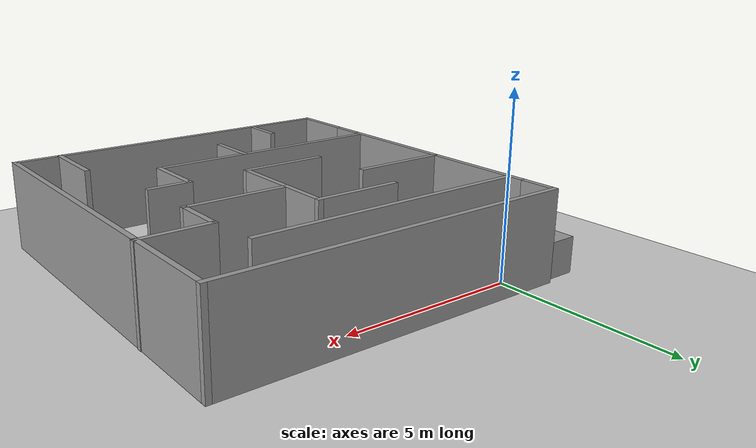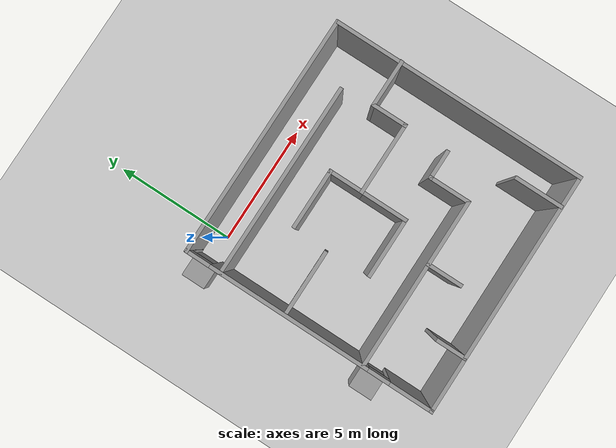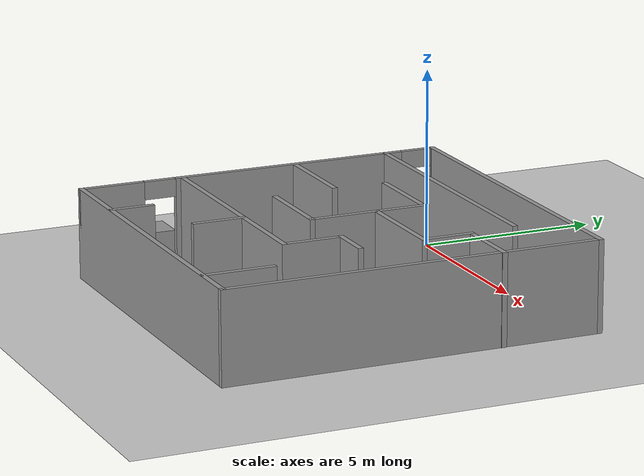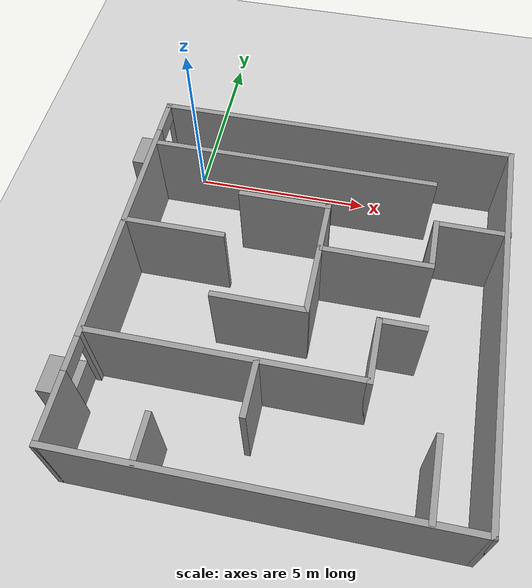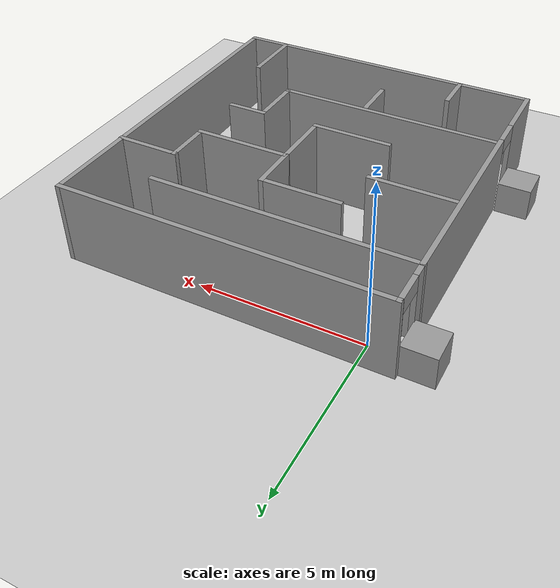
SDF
<sdf version="1.7">
 <world name="default">
  <light name="sun" type="directional">
   <pose>0 0 10 0 -0 0</pose>
   <diffuse>0.8 0.8 0.8 1</diffuse>
   <specular>0.2 0.2 0.2 1</specular>
   <attenuation>
    <range>1000</range>
    <constant>0.9</constant>
    <linear>0.01</linear>
    <quadratic>0.001</quadratic>
   </attenuation>
   <direction>-0.5 0.1 -0.9</direction>
   <spot><inner_angle>0</inner_angle><outer_angle>0</outer_angle><falloff>0</falloff></spot>
  </light>
  <model name="ground_plane">
   <static>1</static>
   <link name="link">
    <collision name="collision">
     <geometry><plane><normal>0 0 1</normal><size>100 100</size></plane></geometry>
     <surface>
      <contact><collide_bitmask>65535</collide_bitmask></contact>
      <friction><ode><mu>100</mu><mu2>50</mu2></ode></friction>
     </surface>
    </collision>
    <visual name="visual">
     <cast_shadows>0</cast_shadows>
     <geometry><plane><normal>0 0 1</normal><size>100 100</size></plane></geometry>
     <material>
      <script><uri>file://media/materials/scripts/gazebo.material</uri><name>Gazebo/Grey</name></script>
     </material>
    </visual>
   </link>
  </model>
  <gravity>0 0 -9.8</gravity>
  <magnetic_field>6e-06 2.3e-05 -4.2e-05</magnetic_field>
  <atmosphere type="adiabatic"/>
  <physics type="ode">
   <max_step_size>0.001</max_step_size>
   <real_time_factor>1</real_time_factor>
   <real_time_update_rate>1000</real_time_update_rate>
  </physics>
  <scene><ambient>0.4 0.4 0.4 1</ambient><background>0.7 0.7 0.7 1</background><shadows>1</shadows></scene>
  <spherical_coordinates>
   <surface_model>EARTH_WGS84</surface_model>
   <latitude_deg>0</latitude_deg>
   <longitude_deg>0</longitude_deg>
   <elevation>0</elevation>
   <heading_deg>0</heading_deg>
  </spherical_coordinates>
  <model name="Untitled">
   <link name="Wall_0">
    <pose>-4.93434 0 0 0 0 -1.5708</pose>
    <visual name="Wall_0_Visual_0">
     <pose>-5.1715 0 1.25 0 -0 0</pose>
     <geometry><box><size>0.157004 0.15 2.5</size></box></geometry>
     <material>
      <script><uri>file://media/materials/scripts/gazebo.material</uri><name>Gazebo/Grey</name></script>
      <ambient>1 1 1 1</ambient>
      <shader type="pixel"/>
     </material>
     <meta><layer>0</layer></meta>
    </visual>
    <visual name="Wall_0_Visual_1">
     <pose>-0.839168 0 1.25 0 -0 0</pose>
     <geometry><box><size>6.70766 0.15 2.5</size></box></geometry>
     <material>
      <script><uri>file://media/materials/scripts/gazebo.material</uri><name>Gazebo/Grey</name></script>
      <ambient>1 1 1 1</ambient>
      <shader type="pixel"/>
     </material>
     <meta><layer>0</layer></meta>
    </visual>
    <visual name="Wall_0_Visual_2">
     <pose>4.33233 0 1.25 0 -0 0</pose>
     <geometry><box><size>1.83534 0.15 2.5</size></box></geometry>
     <material>
      <script><uri>file://media/materials/scripts/gazebo.material</uri><name>Gazebo/Grey</name></script>
      <ambient>1 1 1 1</ambient>
      <shader type="pixel"/>
     </material>
     <meta><layer>0</layer></meta>
    </visual>
    <visual name="Wall_0_Visual_3">
     <pose>-4.643 0 2.25 0 -0 0</pose>
     <geometry><box><size>0.9 0.15 0.5</size></box></geometry>
     <material>
      <script><uri>file://media/materials/scripts/gazebo.material</uri><name>Gazebo/Grey</name></script>
      <ambient>1 1 1 1</ambient>
      <shader type="pixel"/>
     </material>
     <meta><layer>0</layer></meta>
    </visual>
    <visual name="Wall_0_Visual_4">
     <pose>2.96466 0 2.25 0 -0 0</pose>
     <geometry><box><size>0.9 0.15 0.5</size></box></geometry>
     <material>
      <script><uri>file://media/materials/scripts/gazebo.material</uri><name>Gazebo/Grey</name></script>
      <ambient>1 1 1 1</ambient>
      <shader type="pixel"/>
     </material>
     <meta><layer>0</layer></meta>
    </visual>
    <collision name="Wall_0_Collision_0">
     <pose>-5.1715 0 1.25 0 -0 0</pose>
     <geometry><box><size>0.157004 0.15 2.5</size></box></geometry>
     <surface>
      <friction>
       <ode><mu>1</mu><mu2>1</mu2><fdir1>0 0 0</fdir1><slip1>0</slip1><slip2>0</slip2></ode>
       <torsional>
        <coefficient>1</coefficient>
        <patch_radius>0</patch_radius>
        <surface_radius>0</surface_radius>
        <use_patch_radius>1</use_patch_radius>
        <ode><slip>0</slip></ode>
       </torsional>
      </friction>
      <bounce><restitution_coefficient>0</restitution_coefficient><threshold>1e+06</threshold></bounce>
      <contact>
       <collide_without_contact>0</collide_without_contact>
       <collide_without_contact_bitmask>1</collide_without_contact_bitmask>
       <collide_bitmask>1</collide_bitmask>
       <ode>
        <soft_cfm>0</soft_cfm>
        <soft_erp>0.2</soft_erp>
        <kp>1e+13</kp>
        <kd>1</kd>
        <max_vel>0.01</max_vel>
        <min_depth>0</min_depth>
       </ode>
       <bullet>
        <split_impulse>1</split_impulse>
        <split_impulse_penetration_threshold>-0.01</split_impulse_penetration_threshold>
        <soft_cfm>0</soft_cfm>
        <soft_erp>0.2</soft_erp>
        <kp>1e+13</kp>
        <kd>1</kd>
       </bullet>
      </contact>
     </surface>
    </collision>
    <collision name="Wall_0_Collision_2">
     <pose>4.33233 0 1.25 0 -0 0</pose>
     <geometry><box><size>1.83534 0.15 2.5</size></box></geometry>
     <surface>
      <friction>
       <ode><mu>1</mu><mu2>1</mu2><fdir1>0 0 0</fdir1><slip1>0</slip1><slip2>0</slip2></ode>
       <torsional>
        <coefficient>1</coefficient>
        <patch_radius>0</patch_radius>
        <surface_radius>0</surface_radius>
        <use_patch_radius>1</use_patch_radius>
        <ode><slip>0</slip></ode>
       </torsional>
      </friction>
      <bounce><restitution_coefficient>0</restitution_coefficient><threshold>1e+06</threshold></bounce>
      <contact>
       <collide_without_contact>0</collide_without_contact>
       <collide_without_contact_bitmask>1</collide_without_contact_bitmask>
       <collide_bitmask>1</collide_bitmask>
       <ode>
        <soft_cfm>0</soft_cfm>
        <soft_erp>0.2</soft_erp>
        <kp>1e+13</kp>
        <kd>1</kd>
        <max_vel>0.01</max_vel>
        <min_depth>0</min_depth>
       </ode>
       <bullet>
        <split_impulse>1</split_impulse>
        <split_impulse_penetration_threshold>-0.01</split_impulse_penetration_threshold>
        <soft_cfm>0</soft_cfm>
        <soft_erp>0.2</soft_erp>
        <kp>1e+13</kp>
        <kd>1</kd>
       </bullet>
      </contact>
     </surface>
    </collision>
    <collision name="Wall_0_Collision_1">
     <pose>-0.839168 0 1.25 0 -0 0</pose>
     <geometry><box><size>6.70766 0.15 2.5</size></box></geometry>
     <surface>
      <friction>
       <ode><mu>1</mu><mu2>1</mu2><fdir1>0 0 0</fdir1><slip1>0</slip1><slip2>0</slip2></ode>
       <torsional>
        <coefficient>1</coefficient>
        <patch_radius>0</patch_radius>
        <surface_radius>0</surface_radius>
        <use_patch_radius>1</use_patch_radius>
        <ode><slip>0</slip></ode>
       </torsional>
      </friction>
      <bounce><restitution_coefficient>0</restitution_coefficient><threshold>1e+06</threshold></bounce>
      <contact>
       <collide_without_contact>0</collide_without_contact>
       <collide_without_contact_bitmask>1</collide_without_contact_bitmask>
       <collide_bitmask>1</collide_bitmask>
       <ode>
        <soft_cfm>0</soft_cfm>
        <soft_erp>0.2</soft_erp>
        <kp>1e+13</kp>
        <kd>1</kd>
        <max_vel>0.01</max_vel>
        <min_depth>0</min_depth>
       </ode>
       <bullet>
        <split_impulse>1</split_impulse>
        <split_impulse_penetration_threshold>-0.01</split_impulse_penetration_threshold>
        <soft_cfm>0</soft_cfm>
        <soft_erp>0.2</soft_erp>
        <kp>1e+13</kp>
        <kd>1</kd>
       </bullet>
      </contact>
     </surface>
    </collision>
    <collision name="Wall_0_Collision_3">
     <pose>-4.643 0 2.25 0 -0 0</pose>
     <geometry><box><size>0.9 0.15 0.5</size></box></geometry>
     <surface>
      <friction>
       <ode><mu>1</mu><mu2>1</mu2><fdir1>0 0 0</fdir1><slip1>0</slip1><slip2>0</slip2></ode>
       <torsional>
        <coefficient>1</coefficient>
        <patch_radius>0</patch_radius>
        <surface_radius>0</surface_radius>
        <use_patch_radius>1</use_patch_radius>
        <ode><slip>0</slip></ode>
       </torsional>
      </friction>
      <bounce><restitution_coefficient>0</restitution_coefficient><threshold>1e+06</threshold></bounce>
      <contact>
       <collide_without_contact>0</collide_without_contact>
       <collide_without_contact_bitmask>1</collide_without_contact_bitmask>
       <collide_bitmask>1</collide_bitmask>
       <ode>
        <soft_cfm>0</soft_cfm>
        <soft_erp>0.2</soft_erp>
        <kp>1e+13</kp>
        <kd>1</kd>
        <max_vel>0.01</max_vel>
        <min_depth>0</min_depth>
       </ode>
       <bullet>
        <split_impulse>1</split_impulse>
        <split_impulse_penetration_threshold>-0.01</split_impulse_penetration_threshold>
        <soft_cfm>0</soft_cfm>
        <soft_erp>0.2</soft_erp>
        <kp>1e+13</kp>
        <kd>1</kd>
       </bullet>
      </contact>
     </surface>
    </collision>
    <collision name="Wall_0_Collision_4">
     <pose>2.96466 0 2.25 0 -0 0</pose>
     <geometry><box><size>0.9 0.15 0.5</size></box></geometry>
     <surface>
      <friction>
       <ode><mu>1</mu><mu2>1</mu2><fdir1>0 0 0</fdir1><slip1>0</slip1><slip2>0</slip2></ode>
       <torsional>
        <coefficient>1</coefficient>
        <patch_radius>0</patch_radius>
        <surface_radius>0</surface_radius>
        <use_patch_radius>1</use_patch_radius>
        <ode><slip>0</slip></ode>
       </torsional>
      </friction>
      <bounce><restitution_coefficient>0</restitution_coefficient><threshold>1e+06</threshold></bounce>
      <contact>
       <collide_without_contact>0</collide_without_contact>
       <collide_without_contact_bitmask>1</collide_without_contact_bitmask>
       <collide_bitmask>1</collide_bitmask>
       <ode>
        <soft_cfm>0</soft_cfm>
        <soft_erp>0.2</soft_erp>
        <kp>1e+13</kp>
        <kd>1</kd>
        <max_vel>0.01</max_vel>
        <min_depth>0</min_depth>
       </ode>
       <bullet>
        <split_impulse>1</split_impulse>
        <split_impulse_penetration_threshold>-0.01</split_impulse_penetration_threshold>
        <soft_cfm>0</soft_cfm>
        <soft_erp>0.2</soft_erp>
        <kp>1e+13</kp>
        <kd>1</kd>
       </bullet>
      </contact>
     </surface>
    </collision>
   </link>
   <link name="Wall_1">
    <pose>-0.009337 -5.175 0 0 -0 0</pose>
    <visual name="Wall_1_Visual">
     <pose>0 0 1.25 0 -0 0</pose>
     <geometry><box><size>10 0.15 2.5</size></box></geometry>
     <material>
      <script><uri>file://media/materials/scripts/gazebo.material</uri><name>Gazebo/Grey</name></script>
      <ambient>1 1 1 1</ambient>
      <shader type="pixel"/>
     </material>
     <meta><layer>0</layer></meta>
    </visual>
    <collision name="Wall_1_Collision">
     <pose>0 0 1.25 0 -0 0</pose>
     <geometry><box><size>10 0.15 2.5</size></box></geometry>
     <surface>
      <friction>
       <ode><mu>1</mu><mu2>1</mu2><fdir1>0 0 0</fdir1><slip1>0</slip1><slip2>0</slip2></ode>
       <torsional>
        <coefficient>1</coefficient>
        <patch_radius>0</patch_radius>
        <surface_radius>0</surface_radius>
        <use_patch_radius>1</use_patch_radius>
        <ode><slip>0</slip></ode>
       </torsional>
      </friction>
      <bounce><restitution_coefficient>0</restitution_coefficient><threshold>1e+06</threshold></bounce>
      <contact>
       <collide_without_contact>0</collide_without_contact>
       <collide_without_contact_bitmask>1</collide_without_contact_bitmask>
       <collide_bitmask>1</collide_bitmask>
       <ode>
        <soft_cfm>0</soft_cfm>
        <soft_erp>0.2</soft_erp>
        <kp>1e+13</kp>
        <kd>1</kd>
        <max_vel>0.01</max_vel>
        <min_depth>0</min_depth>
       </ode>
       <bullet>
        <split_impulse>1</split_impulse>
        <split_impulse_penetration_threshold>-0.01</split_impulse_penetration_threshold>
        <soft_cfm>0</soft_cfm>
        <soft_erp>0.2</soft_erp>
        <kp>1e+13</kp>
        <kd>1</kd>
       </bullet>
      </contact>
     </surface>
    </collision>
   </link>
   <link name="Wall_10">
    <pose>3.08434 1.76018 0 0 0 -1.5708</pose>
    <visual name="Wall_10_Visual">
     <pose>0 0 1.25 0 -0 0</pose>
     <geometry><box><size>1.5 0.15 2.5</size></box></geometry>
     <material>
      <script><uri>file://media/materials/scripts/gazebo.material</uri><name>Gazebo/Grey</name></script>
      <ambient>1 1 1 1</ambient>
      <shader type="pixel"/>
     </material>
     <meta><layer>0</layer></meta>
    </visual>
    <collision name="Wall_10_Collision">
     <pose>0 0 1.25 0 -0 0</pose>
     <geometry><box><size>1.5 0.15 2.5</size></box></geometry>
     <surface>
      <friction>
       <ode><mu>1</mu><mu2>1</mu2><fdir1>0 0 0</fdir1><slip1>0</slip1><slip2>0</slip2></ode>
       <torsional>
        <coefficient>1</coefficient>
        <patch_radius>0</patch_radius>
        <surface_radius>0</surface_radius>
        <use_patch_radius>1</use_patch_radius>
        <ode><slip>0</slip></ode>
       </torsional>
      </friction>
      <bounce><restitution_coefficient>0</restitution_coefficient><threshold>1e+06</threshold></bounce>
      <contact>
       <collide_without_contact>0</collide_without_contact>
       <collide_without_contact_bitmask>1</collide_without_contact_bitmask>
       <collide_bitmask>1</collide_bitmask>
       <ode>
        <soft_cfm>0</soft_cfm>
        <soft_erp>0.2</soft_erp>
        <kp>1e+13</kp>
        <kd>1</kd>
        <max_vel>0.01</max_vel>
        <min_depth>0</min_depth>
       </ode>
       <bullet>
        <split_impulse>1</split_impulse>
        <split_impulse_penetration_threshold>-0.01</split_impulse_penetration_threshold>
        <soft_cfm>0</soft_cfm>
        <soft_erp>0.2</soft_erp>
        <kp>1e+13</kp>
        <kd>1</kd>
       </bullet>
      </contact>
     </surface>
    </collision>
   </link>
   <link name="Wall_11">
    <pose>1.65934 1.08518 0 0 -0 3.14159</pose>
    <visual name="Wall_11_Visual">
     <pose>0 0 1.25 0 -0 0</pose>
     <geometry><box><size>3 0.15 2.5</size></box></geometry>
     <material>
      <script><uri>file://media/materials/scripts/gazebo.material</uri><name>Gazebo/Grey</name></script>
      <ambient>1 1 1 1</ambient>
      <shader type="pixel"/>
     </material>
     <meta><layer>0</layer></meta>
    </visual>
    <collision name="Wall_11_Collision">
     <pose>0 0 1.25 0 -0 0</pose>
     <geometry><box><size>3 0.15 2.5</size></box></geometry>
     <surface>
      <friction>
       <ode><mu>1</mu><mu2>1</mu2><fdir1>0 0 0</fdir1><slip1>0</slip1><slip2>0</slip2></ode>
       <torsional>
        <coefficient>1</coefficient>
        <patch_radius>0</patch_radius>
        <surface_radius>0</surface_radius>
        <use_patch_radius>1</use_patch_radius>
        <ode><slip>0</slip></ode>
       </torsional>
      </friction>
      <bounce><restitution_coefficient>0</restitution_coefficient><threshold>1e+06</threshold></bounce>
      <contact>
       <collide_without_contact>0</collide_without_contact>
       <collide_without_contact_bitmask>1</collide_without_contact_bitmask>
       <collide_bitmask>1</collide_bitmask>
       <ode>
        <soft_cfm>0</soft_cfm>
        <soft_erp>0.2</soft_erp>
        <kp>1e+13</kp>
        <kd>1</kd>
        <max_vel>0.01</max_vel>
        <min_depth>0</min_depth>
       </ode>
       <bullet>
        <split_impulse>1</split_impulse>
        <split_impulse_penetration_threshold>-0.01</split_impulse_penetration_threshold>
        <soft_cfm>0</soft_cfm>
        <soft_erp>0.2</soft_erp>
        <kp>1e+13</kp>
        <kd>1</kd>
       </bullet>
      </contact>
     </surface>
    </collision>
   </link>
   <link name="Wall_12">
    <pose>0.234337 1.76018 0 0 -0 1.5708</pose>
    <visual name="Wall_12_Visual">
     <pose>0 0 1.25 0 -0 0</pose>
     <geometry><box><size>1.5 0.15 2.5</size></box></geometry>
     <material>
      <script><uri>file://media/materials/scripts/gazebo.material</uri><name>Gazebo/Grey</name></script>
      <ambient>1 1 1 1</ambient>
      <shader type="pixel"/>
     </material>
     <meta><layer>0</layer></meta>
    </visual>
    <collision name="Wall_12_Collision">
     <pose>0 0 1.25 0 -0 0</pose>
     <geometry><box><size>1.5 0.15 2.5</size></box></geometry>
     <surface>
      <friction>
       <ode><mu>1</mu><mu2>1</mu2><fdir1>0 0 0</fdir1><slip1>0</slip1><slip2>0</slip2></ode>
       <torsional>
        <coefficient>1</coefficient>
        <patch_radius>0</patch_radius>
        <surface_radius>0</surface_radius>
        <use_patch_radius>1</use_patch_radius>
        <ode><slip>0</slip></ode>
       </torsional>
      </friction>
      <bounce><restitution_coefficient>0</restitution_coefficient><threshold>1e+06</threshold></bounce>
      <contact>
       <collide_without_contact>0</collide_without_contact>
       <collide_without_contact_bitmask>1</collide_without_contact_bitmask>
       <collide_bitmask>1</collide_bitmask>
       <ode>
        <soft_cfm>0</soft_cfm>
        <soft_erp>0.2</soft_erp>
        <kp>1e+13</kp>
        <kd>1</kd>
        <max_vel>0.01</max_vel>
        <min_depth>0</min_depth>
       </ode>
       <bullet>
        <split_impulse>1</split_impulse>
        <split_impulse_penetration_threshold>-0.01</split_impulse_penetration_threshold>
        <soft_cfm>0</soft_cfm>
        <soft_erp>0.2</soft_erp>
        <kp>1e+13</kp>
        <kd>1</kd>
       </bullet>
      </contact>
     </surface>
    </collision>
   </link>
   <link name="Wall_13">
    <pose>-0.940663 2.43518 0 0 -0 3.14159</pose>
    <visual name="Wall_13_Visual">
     <pose>0 0 1.25 0 -0 0</pose>
     <geometry><box><size>2.5 0.15 2.5</size></box></geometry>
     <material>
      <script><uri>file://media/materials/scripts/gazebo.material</uri><name>Gazebo/Grey</name></script>
      <ambient>1 1 1 1</ambient>
      <shader type="pixel"/>
     </material>
     <meta><layer>0</layer></meta>
    </visual>
    <collision name="Wall_13_Collision">
     <pose>0 0 1.25 0 -0 0</pose>
     <geometry><box><size>2.5 0.15 2.5</size></box></geometry>
     <surface>
      <friction>
       <ode><mu>1</mu><mu2>1</mu2><fdir1>0 0 0</fdir1><slip1>0</slip1><slip2>0</slip2></ode>
       <torsional>
        <coefficient>1</coefficient>
        <patch_radius>0</patch_radius>
        <surface_radius>0</surface_radius>
        <use_patch_radius>1</use_patch_radius>
        <ode><slip>0</slip></ode>
       </torsional>
      </friction>
      <bounce><restitution_coefficient>0</restitution_coefficient><threshold>1e+06</threshold></bounce>
      <contact>
       <collide_without_contact>0</collide_without_contact>
       <collide_without_contact_bitmask>1</collide_without_contact_bitmask>
       <collide_bitmask>1</collide_bitmask>
       <ode>
        <soft_cfm>0</soft_cfm>
        <soft_erp>0.2</soft_erp>
        <kp>1e+13</kp>
        <kd>1</kd>
        <max_vel>0.01</max_vel>
        <min_depth>0</min_depth>
       </ode>
       <bullet>
        <split_impulse>1</split_impulse>
        <split_impulse_penetration_threshold>-0.01</split_impulse_penetration_threshold>
        <soft_cfm>0</soft_cfm>
        <soft_erp>0.2</soft_erp>
        <kp>1e+13</kp>
        <kd>1</kd>
       </bullet>
      </contact>
     </surface>
    </collision>
   </link>
   <link name="Wall_15">
    <pose>0.234337 0.160179 0 0 0 -1.5708</pose>
    <visual name="Wall_15_Visual">
     <pose>0 0 1.25 0 -0 0</pose>
     <geometry><box><size>2 0.15 2.5</size></box></geometry>
     <material>
      <script><uri>file://media/materials/scripts/gazebo.material</uri><name>Gazebo/Grey</name></script>
      <ambient>1 1 1 1</ambient>
      <shader type="pixel"/>
     </material>
     <meta><layer>0</layer></meta>
    </visual>
    <collision name="Wall_15_Collision">
     <pose>0 0 1.25 0 -0 0</pose>
     <geometry><box><size>2 0.15 2.5</size></box></geometry>
     <surface>
      <friction>
       <ode><mu>1</mu><mu2>1</mu2><fdir1>0 0 0</fdir1><slip1>0</slip1><slip2>0</slip2></ode>
       <torsional>
        <coefficient>1</coefficient>
        <patch_radius>0</patch_radius>
        <surface_radius>0</surface_radius>
        <use_patch_radius>1</use_patch_radius>
        <ode><slip>0</slip></ode>
       </torsional>
      </friction>
      <bounce><restitution_coefficient>0</restitution_coefficient><threshold>1e+06</threshold></bounce>
      <contact>
       <collide_without_contact>0</collide_without_contact>
       <collide_without_contact_bitmask>1</collide_without_contact_bitmask>
       <collide_bitmask>1</collide_bitmask>
       <ode>
        <soft_cfm>0</soft_cfm>
        <soft_erp>0.2</soft_erp>
        <kp>1e+13</kp>
        <kd>1</kd>
        <max_vel>0.01</max_vel>
        <min_depth>0</min_depth>
       </ode>
       <bullet>
        <split_impulse>1</split_impulse>
        <split_impulse_penetration_threshold>-0.01</split_impulse_penetration_threshold>
        <soft_cfm>0</soft_cfm>
        <soft_erp>0.2</soft_erp>
        <kp>1e+13</kp>
        <kd>1</kd>
       </bullet>
      </contact>
     </surface>
    </collision>
   </link>
   <link name="Wall_16">
    <pose>-0.940663 -0.764821 0 0 -0 3.14159</pose>
    <visual name="Wall_16_Visual">
     <pose>0 0 1.25 0 -0 0</pose>
     <geometry><box><size>2.5 0.15 2.5</size></box></geometry>
     <material>
      <script><uri>file://media/materials/scripts/gazebo.material</uri><name>Gazebo/Grey</name></script>
      <ambient>1 1 1 1</ambient>
      <shader type="pixel"/>
     </material>
     <meta><layer>0</layer></meta>
    </visual>
    <collision name="Wall_16_Collision">
     <pose>0 0 1.25 0 -0 0</pose>
     <geometry><box><size>2.5 0.15 2.5</size></box></geometry>
     <surface>
      <friction>
       <ode><mu>1</mu><mu2>1</mu2><fdir1>0 0 0</fdir1><slip1>0</slip1><slip2>0</slip2></ode>
       <torsional>
        <coefficient>1</coefficient>
        <patch_radius>0</patch_radius>
        <surface_radius>0</surface_radius>
        <use_patch_radius>1</use_patch_radius>
        <ode><slip>0</slip></ode>
       </torsional>
      </friction>
      <bounce><restitution_coefficient>0</restitution_coefficient><threshold>1e+06</threshold></bounce>
      <contact>
       <collide_without_contact>0</collide_without_contact>
       <collide_without_contact_bitmask>1</collide_without_contact_bitmask>
       <collide_bitmask>1</collide_bitmask>
       <ode>
        <soft_cfm>0</soft_cfm>
        <soft_erp>0.2</soft_erp>
        <kp>1e+13</kp>
        <kd>1</kd>
        <max_vel>0.01</max_vel>
        <min_depth>0</min_depth>
       </ode>
       <bullet>
        <split_impulse>1</split_impulse>
        <split_impulse_penetration_threshold>-0.01</split_impulse_penetration_threshold>
        <soft_cfm>0</soft_cfm>
        <soft_erp>0.2</soft_erp>
        <kp>1e+13</kp>
        <kd>1</kd>
       </bullet>
      </contact>
     </surface>
    </collision>
   </link>
   <link name="Wall_18">
    <pose>-1.42954 -2.29966 0 0 -0 0</pose>
    <visual name="Wall_18_Visual">
     <pose>0 0 1.25 0 -0 0</pose>
     <geometry><box><size>7 0.15 2.5</size></box></geometry>
     <material>
      <script><uri>file://media/materials/scripts/gazebo.material</uri><name>Gazebo/Grey</name></script>
      <ambient>1 1 1 1</ambient>
      <shader type="pixel"/>
     </material>
     <meta><layer>0</layer></meta>
    </visual>
    <collision name="Wall_18_Collision">
     <pose>0 0 1.25 0 -0 0</pose>
     <geometry><box><size>7 0.15 2.5</size></box></geometry>
     <surface>
      <friction>
       <ode><mu>1</mu><mu2>1</mu2><fdir1>0 0 0</fdir1><slip1>0</slip1><slip2>0</slip2></ode>
       <torsional>
        <coefficient>1</coefficient>
        <patch_radius>0</patch_radius>
        <surface_radius>0</surface_radius>
        <use_patch_radius>1</use_patch_radius>
        <ode><slip>0</slip></ode>
       </torsional>
      </friction>
      <bounce><restitution_coefficient>0</restitution_coefficient><threshold>1e+06</threshold></bounce>
      <contact>
       <collide_without_contact>0</collide_without_contact>
       <collide_without_contact_bitmask>1</collide_without_contact_bitmask>
       <collide_bitmask>1</collide_bitmask>
       <ode>
        <soft_cfm>0</soft_cfm>
        <soft_erp>0.2</soft_erp>
        <kp>1e+13</kp>
        <kd>1</kd>
        <max_vel>0.01</max_vel>
        <min_depth>0</min_depth>
       </ode>
       <bullet>
        <split_impulse>1</split_impulse>
        <split_impulse_penetration_threshold>-0.01</split_impulse_penetration_threshold>
        <soft_cfm>0</soft_cfm>
        <soft_erp>0.2</soft_erp>
        <kp>1e+13</kp>
        <kd>1</kd>
       </bullet>
      </contact>
     </surface>
    </collision>
   </link>
   <link name="Wall_19">
    <pose>1.99546 -1.49966 0 0 -0 1.5708</pose>
    <visual name="Wall_19_Visual">
     <pose>0 0 1.25 0 -0 0</pose>
     <geometry><box><size>1.75 0.15 2.5</size></box></geometry>
     <material>
      <script><uri>file://media/materials/scripts/gazebo.material</uri><name>Gazebo/Grey</name></script>
      <ambient>1 1 1 1</ambient>
      <shader type="pixel"/>
     </material>
     <meta><layer>0</layer></meta>
    </visual>
    <collision name="Wall_19_Collision">
     <pose>0 0 1.25 0 -0 0</pose>
     <geometry><box><size>1.75 0.15 2.5</size></box></geometry>
     <surface>
      <friction>
       <ode><mu>1</mu><mu2>1</mu2><fdir1>0 0 0</fdir1><slip1>0</slip1><slip2>0</slip2></ode>
       <torsional>
        <coefficient>1</coefficient>
        <patch_radius>0</patch_radius>
        <surface_radius>0</surface_radius>
        <use_patch_radius>1</use_patch_radius>
        <ode><slip>0</slip></ode>
       </torsional>
      </friction>
      <bounce><restitution_coefficient>0</restitution_coefficient><threshold>1e+06</threshold></bounce>
      <contact>
       <collide_without_contact>0</collide_without_contact>
       <collide_without_contact_bitmask>1</collide_without_contact_bitmask>
       <collide_bitmask>1</collide_bitmask>
       <ode>
        <soft_cfm>0</soft_cfm>
        <soft_erp>0.2</soft_erp>
        <kp>1e+13</kp>
        <kd>1</kd>
        <max_vel>0.01</max_vel>
        <min_depth>0</min_depth>
       </ode>
       <bullet>
        <split_impulse>1</split_impulse>
        <split_impulse_penetration_threshold>-0.01</split_impulse_penetration_threshold>
        <soft_cfm>0</soft_cfm>
        <soft_erp>0.2</soft_erp>
        <kp>1e+13</kp>
        <kd>1</kd>
       </bullet>
      </contact>
     </surface>
    </collision>
   </link>
   <link name="Wall_2">
    <pose>4.91566 0 0 0 -0 1.5708</pose>
    <visual name="Wall_2_Visual">
     <pose>0 0 1.25 0 -0 0</pose>
     <geometry><box><size>10.5 0.15 2.5</size></box></geometry>
     <material>
      <script><uri>file://media/materials/scripts/gazebo.material</uri><name>Gazebo/Grey</name></script>
      <ambient>1 1 1 1</ambient>
      <shader type="pixel"/>
     </material>
     <meta><layer>0</layer></meta>
    </visual>
    <collision name="Wall_2_Collision">
     <pose>0 0 1.25 0 -0 0</pose>
     <geometry><box><size>10.5 0.15 2.5</size></box></geometry>
     <surface>
      <friction>
       <ode><mu>1</mu><mu2>1</mu2><fdir1>0 0 0</fdir1><slip1>0</slip1><slip2>0</slip2></ode>
       <torsional>
        <coefficient>1</coefficient>
        <patch_radius>0</patch_radius>
        <surface_radius>0</surface_radius>
        <use_patch_radius>1</use_patch_radius>
        <ode><slip>0</slip></ode>
       </torsional>
      </friction>
      <bounce><restitution_coefficient>0</restitution_coefficient><threshold>1e+06</threshold></bounce>
      <contact>
       <collide_without_contact>0</collide_without_contact>
       <collide_without_contact_bitmask>1</collide_without_contact_bitmask>
       <collide_bitmask>1</collide_bitmask>
       <ode>
        <soft_cfm>0</soft_cfm>
        <soft_erp>0.2</soft_erp>
        <kp>1e+13</kp>
        <kd>1</kd>
        <max_vel>0.01</max_vel>
        <min_depth>0</min_depth>
       </ode>
       <bullet>
        <split_impulse>1</split_impulse>
        <split_impulse_penetration_threshold>-0.01</split_impulse_penetration_threshold>
        <soft_cfm>0</soft_cfm>
        <soft_erp>0.2</soft_erp>
        <kp>1e+13</kp>
        <kd>1</kd>
       </bullet>
      </contact>
     </surface>
    </collision>
   </link>
   <link name="Wall_20">
    <pose>2.54546 -0.699656 0 0 -0 0</pose>
    <visual name="Wall_20_Visual">
     <pose>0 0 1.25 0 -0 0</pose>
     <geometry><box><size>1.25 0.15 2.5</size></box></geometry>
     <material>
      <script><uri>file://media/materials/scripts/gazebo.material</uri><name>Gazebo/Grey</name></script>
      <ambient>1 1 1 1</ambient>
      <shader type="pixel"/>
     </material>
     <meta><layer>0</layer></meta>
    </visual>
    <collision name="Wall_20_Collision">
     <pose>0 0 1.25 0 -0 0</pose>
     <geometry><box><size>1.25 0.15 2.5</size></box></geometry>
     <surface>
      <friction>
       <ode><mu>1</mu><mu2>1</mu2><fdir1>0 0 0</fdir1><slip1>0</slip1><slip2>0</slip2></ode>
       <torsional>
        <coefficient>1</coefficient>
        <patch_radius>0</patch_radius>
        <surface_radius>0</surface_radius>
        <use_patch_radius>1</use_patch_radius>
        <ode><slip>0</slip></ode>
       </torsional>
      </friction>
      <bounce><restitution_coefficient>0</restitution_coefficient><threshold>1e+06</threshold></bounce>
      <contact>
       <collide_without_contact>0</collide_without_contact>
       <collide_without_contact_bitmask>1</collide_without_contact_bitmask>
       <collide_bitmask>1</collide_bitmask>
       <ode>
        <soft_cfm>0</soft_cfm>
        <soft_erp>0.2</soft_erp>
        <kp>1e+13</kp>
        <kd>1</kd>
        <max_vel>0.01</max_vel>
        <min_depth>0</min_depth>
       </ode>
       <bullet>
        <split_impulse>1</split_impulse>
        <split_impulse_penetration_threshold>-0.01</split_impulse_penetration_threshold>
        <soft_cfm>0</soft_cfm>
        <soft_erp>0.2</soft_erp>
        <kp>1e+13</kp>
        <kd>1</kd>
       </bullet>
      </contact>
     </surface>
    </collision>
   </link>
   <link name="Wall_22">
    <pose>-0.651705 -2.97492 0 0 0 -1.5708</pose>
    <visual name="Wall_22_Visual">
     <pose>0 0 1.25 0 -0 0</pose>
     <geometry><box><size>1.5 0.15 2.5</size></box></geometry>
     <material>
      <script><uri>file://media/materials/scripts/gazebo.material</uri><name>Gazebo/Grey</name></script>
      <ambient>1 1 1 1</ambient>
      <shader type="pixel"/>
     </material>
     <meta><layer>0</layer></meta>
    </visual>
    <collision name="Wall_22_Collision">
     <pose>0 0 1.25 0 -0 0</pose>
     <geometry><box><size>1.5 0.15 2.5</size></box></geometry>
     <surface>
      <friction>
       <ode><mu>1</mu><mu2>1</mu2><fdir1>0 0 0</fdir1><slip1>0</slip1><slip2>0</slip2></ode>
       <torsional>
        <coefficient>1</coefficient>
        <patch_radius>0</patch_radius>
        <surface_radius>0</surface_radius>
        <use_patch_radius>1</use_patch_radius>
        <ode><slip>0</slip></ode>
       </torsional>
      </friction>
      <bounce><restitution_coefficient>0</restitution_coefficient><threshold>1e+06</threshold></bounce>
      <contact>
       <collide_without_contact>0</collide_without_contact>
       <collide_without_contact_bitmask>1</collide_without_contact_bitmask>
       <collide_bitmask>1</collide_bitmask>
       <ode>
        <soft_cfm>0</soft_cfm>
        <soft_erp>0.2</soft_erp>
        <kp>1e+13</kp>
        <kd>1</kd>
        <max_vel>0.01</max_vel>
        <min_depth>0</min_depth>
       </ode>
       <bullet>
        <split_impulse>1</split_impulse>
        <split_impulse_penetration_threshold>-0.01</split_impulse_penetration_threshold>
        <soft_cfm>0</soft_cfm>
        <soft_erp>0.2</soft_erp>
        <kp>1e+13</kp>
        <kd>1</kd>
       </bullet>
      </contact>
     </surface>
    </collision>
   </link>
   <link name="Wall_24">
    <pose>-2.72652 -4.59588 0 0 -0 1.5708</pose>
    <visual name="Wall_24_Visual">
     <pose>0 0 1.25 0 -0 0</pose>
     <geometry><box><size>1.25 0.15 2.5</size></box></geometry>
     <material>
      <script><uri>file://media/materials/scripts/gazebo.material</uri><name>Gazebo/Grey</name></script>
      <ambient>1 1 1 1</ambient>
      <shader type="pixel"/>
     </material>
     <meta><layer>0</layer></meta>
    </visual>
    <collision name="Wall_24_Collision">
     <pose>0 0 1.25 0 -0 0</pose>
     <geometry><box><size>1.25 0.15 2.5</size></box></geometry>
     <surface>
      <friction>
       <ode><mu>1</mu><mu2>1</mu2><fdir1>0 0 0</fdir1><slip1>0</slip1><slip2>0</slip2></ode>
       <torsional>
        <coefficient>1</coefficient>
        <patch_radius>0</patch_radius>
        <surface_radius>0</surface_radius>
        <use_patch_radius>1</use_patch_radius>
        <ode><slip>0</slip></ode>
       </torsional>
      </friction>
      <bounce><restitution_coefficient>0</restitution_coefficient><threshold>1e+06</threshold></bounce>
      <contact>
       <collide_without_contact>0</collide_without_contact>
       <collide_without_contact_bitmask>1</collide_without_contact_bitmask>
       <collide_bitmask>1</collide_bitmask>
       <ode>
        <soft_cfm>0</soft_cfm>
        <soft_erp>0.2</soft_erp>
        <kp>1e+13</kp>
        <kd>1</kd>
        <max_vel>0.01</max_vel>
        <min_depth>0</min_depth>
       </ode>
       <bullet>
        <split_impulse>1</split_impulse>
        <split_impulse_penetration_threshold>-0.01</split_impulse_penetration_threshold>
        <soft_cfm>0</soft_cfm>
        <soft_erp>0.2</soft_erp>
        <kp>1e+13</kp>
        <kd>1</kd>
       </bullet>
      </contact>
     </surface>
    </collision>
   </link>
   <link name="Wall_26">
    <pose>3.65753 -4.22088 0 0 -0 1.5708</pose>
    <visual name="Wall_26_Visual">
     <pose>0 0 1.25 0 -0 0</pose>
     <geometry><box><size>2 0.15 2.5</size></box></geometry>
     <material>
      <script><uri>file://media/materials/scripts/gazebo.material</uri><name>Gazebo/Grey</name></script>
      <ambient>1 1 1 1</ambient>
      <shader type="pixel"/>
     </material>
     <meta><layer>0</layer></meta>
    </visual>
    <collision name="Wall_26_Collision">
     <pose>0 0 1.25 0 -0 0</pose>
     <geometry><box><size>2 0.15 2.5</size></box></geometry>
     <surface>
      <friction>
       <ode><mu>1</mu><mu2>1</mu2><fdir1>0 0 0</fdir1><slip1>0</slip1><slip2>0</slip2></ode>
       <torsional>
        <coefficient>1</coefficient>
        <patch_radius>0</patch_radius>
        <surface_radius>0</surface_radius>
        <use_patch_radius>1</use_patch_radius>
        <ode><slip>0</slip></ode>
       </torsional>
      </friction>
      <bounce><restitution_coefficient>0</restitution_coefficient><threshold>1e+06</threshold></bounce>
      <contact>
       <collide_without_contact>0</collide_without_contact>
       <collide_without_contact_bitmask>1</collide_without_contact_bitmask>
       <collide_bitmask>1</collide_bitmask>
       <ode>
        <soft_cfm>0</soft_cfm>
        <soft_erp>0.2</soft_erp>
        <kp>1e+13</kp>
        <kd>1</kd>
        <max_vel>0.01</max_vel>
        <min_depth>0</min_depth>
       </ode>
       <bullet>
        <split_impulse>1</split_impulse>
        <split_impulse_penetration_threshold>-0.01</split_impulse_penetration_threshold>
        <soft_cfm>0</soft_cfm>
        <soft_erp>0.2</soft_erp>
        <kp>1e+13</kp>
        <kd>1</kd>
       </bullet>
      </contact>
     </surface>
    </collision>
   </link>
   <link name="Wall_3">
    <pose>-0.009337 5.175 0 0 -0 3.14159</pose>
    <visual name="Wall_3_Visual">
     <pose>0 0 1.25 0 -0 0</pose>
     <geometry><box><size>10 0.15 2.5</size></box></geometry>
     <material>
      <script><uri>file://media/materials/scripts/gazebo.material</uri><name>Gazebo/Grey</name></script>
      <ambient>1 1 1 1</ambient>
      <shader type="pixel"/>
     </material>
     <meta><layer>0</layer></meta>
    </visual>
    <collision name="Wall_3_Collision">
     <pose>0 0 1.25 0 -0 0</pose>
     <geometry><box><size>10 0.15 2.5</size></box></geometry>
     <surface>
      <friction>
       <ode><mu>1</mu><mu2>1</mu2><fdir1>0 0 0</fdir1><slip1>0</slip1><slip2>0</slip2></ode>
       <torsional>
        <coefficient>1</coefficient>
        <patch_radius>0</patch_radius>
        <surface_radius>0</surface_radius>
        <use_patch_radius>1</use_patch_radius>
        <ode><slip>0</slip></ode>
       </torsional>
      </friction>
      <bounce><restitution_coefficient>0</restitution_coefficient><threshold>1e+06</threshold></bounce>
      <contact>
       <collide_without_contact>0</collide_without_contact>
       <collide_without_contact_bitmask>1</collide_without_contact_bitmask>
       <collide_bitmask>1</collide_bitmask>
       <ode>
        <soft_cfm>0</soft_cfm>
        <soft_erp>0.2</soft_erp>
        <kp>1e+13</kp>
        <kd>1</kd>
        <max_vel>0.01</max_vel>
        <min_depth>0</min_depth>
       </ode>
       <bullet>
        <split_impulse>1</split_impulse>
        <split_impulse_penetration_threshold>-0.01</split_impulse_penetration_threshold>
        <soft_cfm>0</soft_cfm>
        <soft_erp>0.2</soft_erp>
        <kp>1e+13</kp>
        <kd>1</kd>
       </bullet>
      </contact>
     </surface>
    </collision>
   </link>
   <link name="Wall_5">
    <pose>-1.00934 3.73859 0 0 -0 0</pose>
    <visual name="Wall_5_Visual">
     <pose>0 0 1.25 0 -0 0</pose>
     <geometry><box><size>8 0.15 2.5</size></box></geometry>
     <material>
      <script><uri>file://media/materials/scripts/gazebo.material</uri><name>Gazebo/Grey</name></script>
      <ambient>1 1 1 1</ambient>
      <shader type="pixel"/>
     </material>
     <meta><layer>0</layer></meta>
    </visual>
    <collision name="Wall_5_Collision">
     <pose>0 0 1.25 0 -0 0</pose>
     <geometry><box><size>8 0.15 2.5</size></box></geometry>
     <surface>
      <friction>
       <ode><mu>1</mu><mu2>1</mu2><fdir1>0 0 0</fdir1><slip1>0</slip1><slip2>0</slip2></ode>
       <torsional>
        <coefficient>1</coefficient>
        <patch_radius>0</patch_radius>
        <surface_radius>0</surface_radius>
        <use_patch_radius>1</use_patch_radius>
        <ode><slip>0</slip></ode>
       </torsional>
      </friction>
      <bounce><restitution_coefficient>0</restitution_coefficient><threshold>1e+06</threshold></bounce>
      <contact>
       <collide_without_contact>0</collide_without_contact>
       <collide_without_contact_bitmask>1</collide_without_contact_bitmask>
       <collide_bitmask>1</collide_bitmask>
       <ode>
        <soft_cfm>0</soft_cfm>
        <soft_erp>0.2</soft_erp>
        <kp>1e+13</kp>
        <kd>1</kd>
        <max_vel>0.01</max_vel>
        <min_depth>0</min_depth>
       </ode>
       <bullet>
        <split_impulse>1</split_impulse>
        <split_impulse_penetration_threshold>-0.01</split_impulse_penetration_threshold>
        <soft_cfm>0</soft_cfm>
        <soft_erp>0.2</soft_erp>
        <kp>1e+13</kp>
        <kd>1</kd>
       </bullet>
      </contact>
     </surface>
    </collision>
   </link>
   <link name="Wall_7">
    <pose>-3.60774 0.998769 0 0 -0 0</pose>
    <visual name="Wall_7_Visual">
     <pose>0 0 1.25 0 -0 0</pose>
     <geometry><box><size>2.75 0.15 2.5</size></box></geometry>
     <material>
      <script><uri>file://media/materials/scripts/gazebo.material</uri><name>Gazebo/Grey</name></script>
      <ambient>1 1 1 1</ambient>
      <shader type="pixel"/>
     </material>
     <meta><layer>0</layer></meta>
    </visual>
    <collision name="Wall_7_Collision">
     <pose>0 0 1.25 0 -0 0</pose>
     <geometry><box><size>2.75 0.15 2.5</size></box></geometry>
     <surface>
      <friction>
       <ode><mu>1</mu><mu2>1</mu2><fdir1>0 0 0</fdir1><slip1>0</slip1><slip2>0</slip2></ode>
       <torsional>
        <coefficient>1</coefficient>
        <patch_radius>0</patch_radius>
        <surface_radius>0</surface_radius>
        <use_patch_radius>1</use_patch_radius>
        <ode><slip>0</slip></ode>
       </torsional>
      </friction>
      <bounce><restitution_coefficient>0</restitution_coefficient><threshold>1e+06</threshold></bounce>
      <contact>
       <collide_without_contact>0</collide_without_contact>
       <collide_without_contact_bitmask>1</collide_without_contact_bitmask>
       <collide_bitmask>1</collide_bitmask>
       <ode>
        <soft_cfm>0</soft_cfm>
        <soft_erp>0.2</soft_erp>
        <kp>1e+13</kp>
        <kd>1</kd>
        <max_vel>0.01</max_vel>
        <min_depth>0</min_depth>
       </ode>
       <bullet>
        <split_impulse>1</split_impulse>
        <split_impulse_penetration_threshold>-0.01</split_impulse_penetration_threshold>
        <soft_cfm>0</soft_cfm>
        <soft_erp>0.2</soft_erp>
        <kp>1e+13</kp>
        <kd>1</kd>
       </bullet>
      </contact>
     </surface>
    </collision>
   </link>
   <link name="Wall_9">
    <pose>4.00934 2.43518 0 0 -0 3.14159</pose>
    <visual name="Wall_9_Visual">
     <pose>0 0 1.25 0 -0 0</pose>
     <geometry><box><size>2 0.15 2.5</size></box></geometry>
     <material>
      <script><uri>file://media/materials/scripts/gazebo.material</uri><name>Gazebo/Grey</name></script>
      <ambient>1 1 1 1</ambient>
      <shader type="pixel"/>
     </material>
     <meta><layer>0</layer></meta>
    </visual>
    <collision name="Wall_9_Collision">
     <pose>0 0 1.25 0 -0 0</pose>
     <geometry><box><size>2 0.15 2.5</size></box></geometry>
     <surface>
      <friction>
       <ode><mu>1</mu><mu2>1</mu2><fdir1>0 0 0</fdir1><slip1>0</slip1><slip2>0</slip2></ode>
       <torsional>
        <coefficient>1</coefficient>
        <patch_radius>0</patch_radius>
        <surface_radius>0</surface_radius>
        <use_patch_radius>1</use_patch_radius>
        <ode><slip>0</slip></ode>
       </torsional>
      </friction>
      <bounce><restitution_coefficient>0</restitution_coefficient><threshold>1e+06</threshold></bounce>
      <contact>
       <collide_without_contact>0</collide_without_contact>
       <collide_without_contact_bitmask>1</collide_without_contact_bitmask>
       <collide_bitmask>1</collide_bitmask>
       <ode>
        <soft_cfm>0</soft_cfm>
        <soft_erp>0.2</soft_erp>
        <kp>1e+13</kp>
        <kd>1</kd>
        <max_vel>0.01</max_vel>
        <min_depth>0</min_depth>
       </ode>
       <bullet>
        <split_impulse>1</split_impulse>
        <split_impulse_penetration_threshold>-0.01</split_impulse_penetration_threshold>
        <soft_cfm>0</soft_cfm>
        <soft_erp>0.2</soft_erp>
        <kp>1e+13</kp>
        <kd>1</kd>
       </bullet>
      </contact>
     </surface>
    </collision>
   </link>
   <link name="link_4">
    <inertial>
     <mass>1</mass>
     <inertia>
      <ixx>0.166667</ixx>
      <ixy>0</ixy>
      <ixz>0</ixz>
      <iyy>0.166667</iyy>
      <iyz>0</iyz>
      <izz>0.166667</izz>
     </inertia>
    </inertial>
    <pose>-5.48717 4.60508 0.5 0 -0 0</pose>
    <visual name="visual">
     <geometry><box><size>1 1 1</size></box></geometry>
     <material>
      <lighting>1</lighting>
      <script><uri>file://media/materials/scripts/gazebo.material</uri><name>Gazebo/Grey</name></script>
      <shader type="pixel"/>
     </material>
    </visual>
    <collision name="collision">
     <geometry><box><size>1 1 1</size></box></geometry>
     <surface>
      <friction>
       <ode><mu>1</mu><mu2>1</mu2><fdir1>0 0 0</fdir1><slip1>0</slip1><slip2>0</slip2></ode>
       <torsional>
        <coefficient>1</coefficient>
        <patch_radius>0</patch_radius>
        <surface_radius>0</surface_radius>
        <use_patch_radius>1</use_patch_radius>
        <ode><slip>0</slip></ode>
       </torsional>
      </friction>
      <bounce><restitution_coefficient>0</restitution_coefficient><threshold>1e+06</threshold></bounce>
      <contact>
       <collide_without_contact>0</collide_without_contact>
       <collide_without_contact_bitmask>1</collide_without_contact_bitmask>
       <collide_bitmask>1</collide_bitmask>
       <ode>
        <soft_cfm>0</soft_cfm>
        <soft_erp>0.2</soft_erp>
        <kp>1e+13</kp>
        <kd>1</kd>
        <max_vel>0.01</max_vel>
        <min_depth>0</min_depth>
       </ode>
       <bullet>
        <split_impulse>1</split_impulse>
        <split_impulse_penetration_threshold>-0.01</split_impulse_penetration_threshold>
        <soft_cfm>0</soft_cfm>
        <soft_erp>0.2</soft_erp>
        <kp>1e+13</kp>
        <kd>1</kd>
       </bullet>
      </contact>
     </surface>
    </collision>
   </link>
   <link name="link_5">
    <inertial>
     <mass>1</mass>
     <inertia>
      <ixx>0.166667</ixx>
      <ixy>0</ixy>
      <ixz>0</ixz>
      <iyy>0.166667</iyy>
      <iyz>0</iyz>
      <izz>0.166667</izz>
     </inertia>
    </inertial>
    <pose>-5.54285 -2.97214 0.5 0 -0 0</pose>
    <visual name="visual">
     <geometry><box><size>1 1 1</size></box></geometry>
     <material>
      <lighting>1</lighting>
      <script><uri>file://media/materials/scripts/gazebo.material</uri><name>Gazebo/Grey</name></script>
      <shader type="pixel"/>
     </material>
    </visual>
    <collision name="collision">
     <geometry><box><size>1 1 1</size></box></geometry>
     <surface>
      <friction>
       <ode><mu>1</mu><mu2>1</mu2><fdir1>0 0 0</fdir1><slip1>0</slip1><slip2>0</slip2></ode>
       <torsional>
        <coefficient>1</coefficient>
        <patch_radius>0</patch_radius>
        <surface_radius>0</surface_radius>
        <use_patch_radius>1</use_patch_radius>
        <ode><slip>0</slip></ode>
       </torsional>
      </friction>
      <bounce><restitution_coefficient>0</restitution_coefficient><threshold>1e+06</threshold></bounce>
      <contact>
       <collide_without_contact>0</collide_without_contact>
       <collide_without_contact_bitmask>1</collide_without_contact_bitmask>
       <collide_bitmask>1</collide_bitmask>
       <ode>
        <soft_cfm>0</soft_cfm>
        <soft_erp>0.2</soft_erp>
        <kp>1e+13</kp>
        <kd>1</kd>
        <max_vel>0.01</max_vel>
        <min_depth>0</min_depth>
       </ode>
       <bullet>
        <split_impulse>1</split_impulse>
        <split_impulse_penetration_threshold>-0.01</split_impulse_penetration_threshold>
        <soft_cfm>0</soft_cfm>
        <soft_erp>0.2</soft_erp>
        <kp>1e+13</kp>
        <kd>1</kd>
       </bullet>
      </contact>
     </surface>
    </collision>
   </link>
   <static>1</static>
   <pose>3.95482 -4.53982 0 0 -0 0</pose>
  </model>
 </world>
</sdf>
